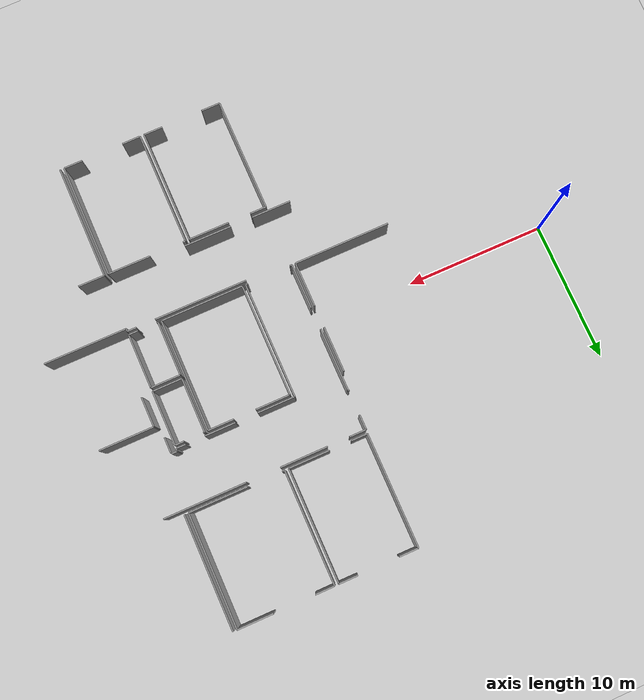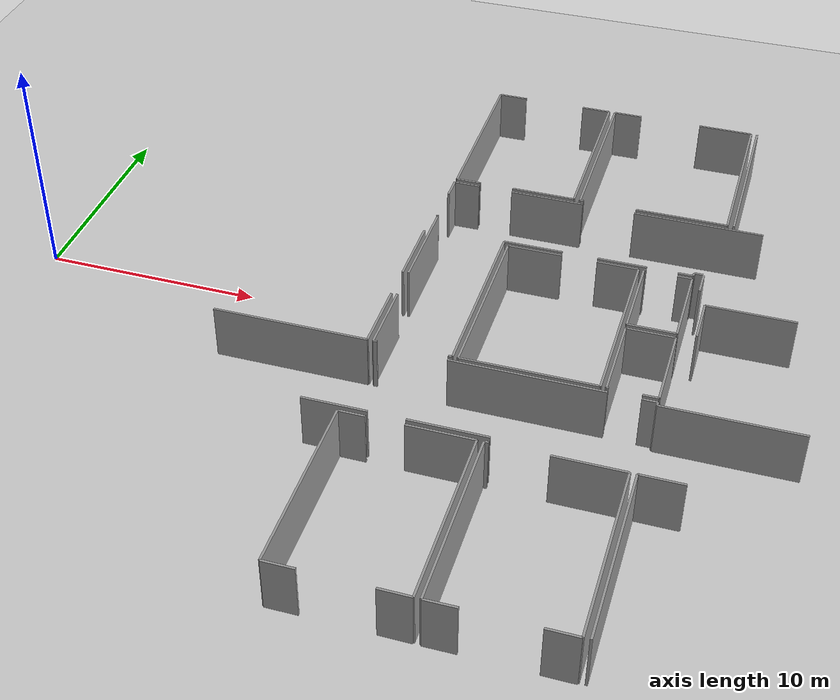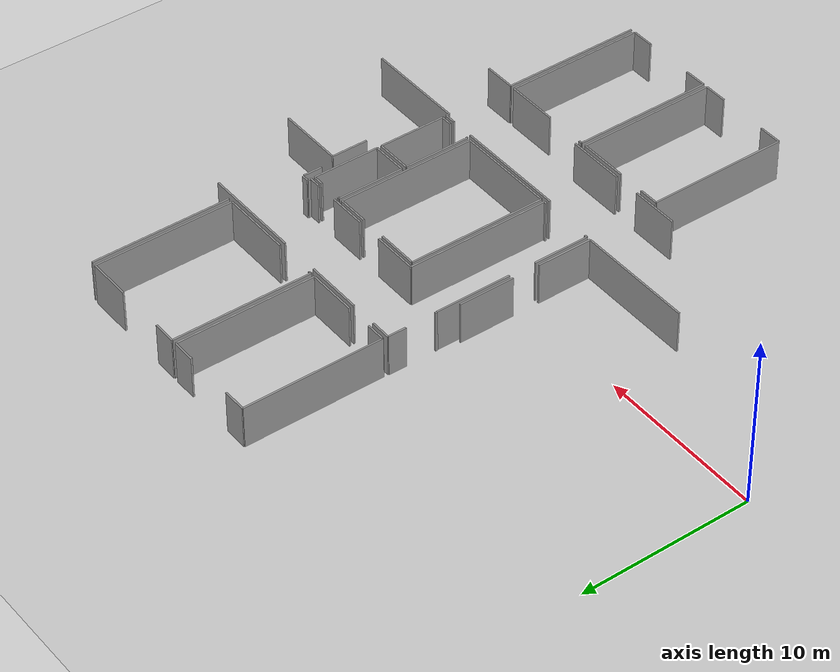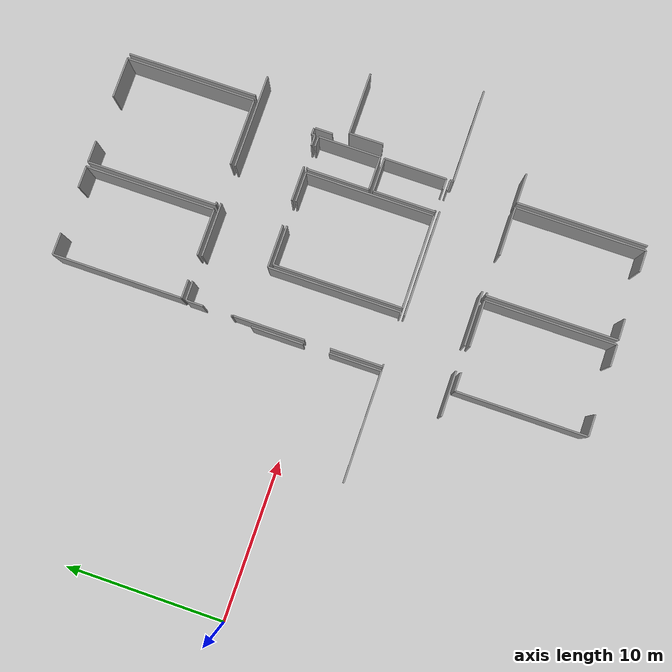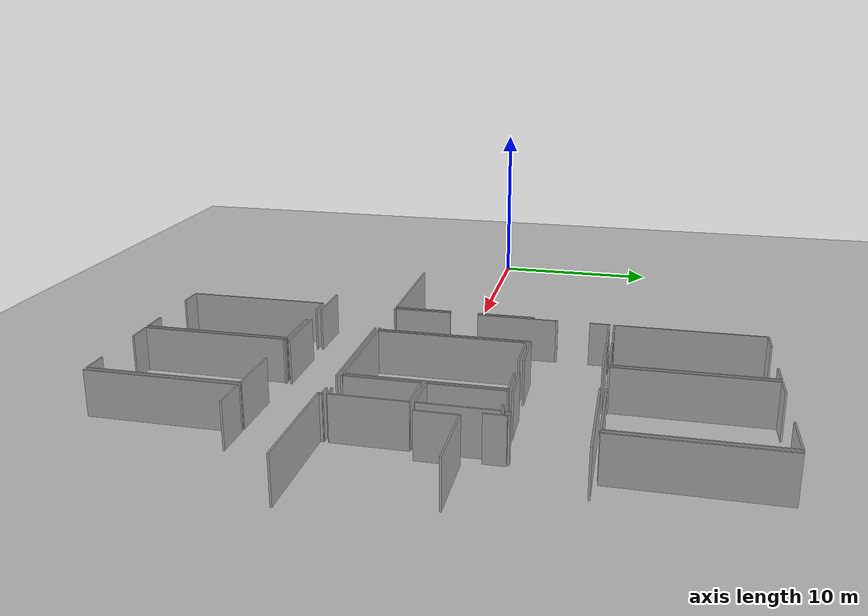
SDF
<sdf version="1.6">
 <world name="default">
  <model name="ground_plane">
   <static>1</static>
   <link name="link">
    <collision name="collision">
     <geometry><plane><normal>0 0 1</normal><size>100 100</size></plane></geometry>
     <surface><friction><ode><mu>100</mu><mu2>50</mu2></ode></friction></surface>
    </collision>
    <visual name="visual">
     <cast_shadows>0</cast_shadows>
     <geometry><plane><normal>0 0 1</normal><size>100 100</size></plane></geometry>
     <material>
      <script><uri>file://media/materials/scripts/gazebo.material</uri><name>Gazebo/Grey</name></script>
     </material>
    </visual>
   </link>
  </model>
  <model name="50041174">
   <static>1</static>
   <link name="Wall_67">
    <collision name="Wall_67_Collision">
     <geometry><box><size>8.19992383854 0.1 2.5</size></box></geometry>
     <pose>4.09996191927 0 1.25 0 0 0</pose>
    </collision>
    <visual name="Wall_67_Visual">
     <pose>4.09996191927 0 1.25 0 0 0</pose>
     <geometry><box><size>8.19992383854 0.1 2.5</size></box></geometry>
     <material>
      <script><uri>file://media/materials/scripts/gazebo.material</uri><name>Gazebo/Grey</name></script>
      <ambient>1 1 1 1</ambient>
     </material>
    </visual>
    <pose>95.7486671744 -33.5128205128 0 0 0 1.57079632679</pose>
   </link>
   <link name="Wall_68">
    <collision name="Wall_68_Collision">
     <geometry><box><size>1.89134298045 0.1 2.5</size></box></geometry>
     <pose>0.945671490226 0 1.25 0 0 0</pose>
    </collision>
    <visual name="Wall_68_Visual">
     <pose>0.945671490226 0 1.25 0 0 0</pose>
     <geometry><box><size>1.89134298045 0.1 2.5</size></box></geometry>
     <material>
      <script><uri>file://media/materials/scripts/gazebo.material</uri><name>Gazebo/Grey</name></script>
      <ambient>1 1 1 1</ambient>
     </material>
    </visual>
    <pose>95.7486671744 -25.3128966743 0 0 0 0.0</pose>
   </link>
   <link name="Wall_73">
    <collision name="Wall_73_Collision">
     <geometry><box><size>8.21541000254 0.1 2.5</size></box></geometry>
     <pose>4.10770500127 0 1.25 0 0 0</pose>
    </collision>
    <visual name="Wall_73_Visual">
     <pose>4.10770500127 0 1.25 0 0 0</pose>
     <geometry><box><size>8.21541000254 0.1 2.5</size></box></geometry>
     <material>
      <script><uri>file://media/materials/scripts/gazebo.material</uri><name>Gazebo/Grey</name></script>
      <ambient>1 1 1 1</ambient>
     </material>
    </visual>
    <pose>83.7559025133 -33.5304645849 0 0 0 1.57079632679</pose>
   </link>
   <link name="Wall_74">
    <collision name="Wall_74_Collision">
     <geometry><box><size>1.16400101549 0.1 2.5</size></box></geometry>
     <pose>0.582000507743 0 1.25 0 0 0</pose>
    </collision>
    <visual name="Wall_74_Visual">
     <pose>0.582000507743 0 1.25 0 0 0</pose>
     <geometry><box><size>1.16400101549 0.1 2.5</size></box></geometry>
     <material>
      <script><uri>file://media/materials/scripts/gazebo.material</uri><name>Gazebo/Grey</name></script>
      <ambient>1 1 1 1</ambient>
     </material>
    </visual>
    <pose>83.7559025133 -25.3150545824 0 0 0 0.0</pose>
   </link>
   <link name="Wall_75">
    <collision name="Wall_75_Collision">
     <geometry><box><size>2.92853516121 0.1 2.5</size></box></geometry>
     <pose>1.4642675806 0 1.25 0 0 0</pose>
    </collision>
    <visual name="Wall_75_Visual">
     <pose>1.4642675806 0 1.25 0 0 0</pose>
     <geometry><box><size>2.92853516121 0.1 2.5</size></box></geometry>
     <material>
      <script><uri>file://media/materials/scripts/gazebo.material</uri><name>Gazebo/Grey</name></script>
      <ambient>1 1 1 1</ambient>
     </material>
    </visual>
    <pose>86.5473470424 -25.3150545824 0 0 0 0.0</pose>
   </link>
   <link name="Wall_76">
    <collision name="Wall_76_Collision">
     <geometry><box><size>8.2129982229 0.1 2.5</size></box></geometry>
     <pose>4.10649911145 0 1.25 0 0 0</pose>
    </collision>
    <visual name="Wall_76_Visual">
     <pose>4.10649911145 0 1.25 0 0 0</pose>
     <geometry><box><size>8.2129982229 0.1 2.5</size></box></geometry>
     <material>
      <script><uri>file://media/materials/scripts/gazebo.material</uri><name>Gazebo/Grey</name></script>
      <ambient>1 1 1 1</ambient>
     </material>
    </visual>
    <pose>89.4758822036 -25.3150545824 0 0 0 -1.57079632679</pose>
   </link>
   <link name="Wall_77">
    <collision name="Wall_77_Collision">
     <geometry><box><size>1.36900228484 0.1 2.5</size></box></geometry>
     <pose>0.684501142422 0 1.25 0 0 0</pose>
    </collision>
    <visual name="Wall_77_Visual">
     <pose>0.684501142422 0 1.25 0 0 0</pose>
     <geometry><box><size>1.36900228484 0.1 2.5</size></box></geometry>
     <material>
      <script><uri>file://media/materials/scripts/gazebo.material</uri><name>Gazebo/Grey</name></script>
      <ambient>1 1 1 1</ambient>
     </material>
    </visual>
    <pose>89.4758822036 -33.5280528053 0 0 0 3.14159265359</pose>
   </link>
   <link name="Wall_78">
    <collision name="Wall_78_Collision">
     <geometry><box><size>1.36316537292 0.1 2.5</size></box></geometry>
     <pose>0.681582686461 0 1.25 0 0 0</pose>
    </collision>
    <visual name="Wall_78_Visual">
     <pose>0.681582686461 0 1.25 0 0 0</pose>
     <geometry><box><size>1.36316537292 0.1 2.5</size></box></geometry>
     <material>
      <script><uri>file://media/materials/scripts/gazebo.material</uri><name>Gazebo/Grey</name></script>
      <ambient>1 1 1 1</ambient>
     </material>
    </visual>
    <pose>85.1190657527 -33.5280528053 0 0 0 -3.13982340318</pose>
   </link>
   <link name="Wall_79">
    <collision name="Wall_79_Collision">
     <geometry><box><size>8.22162985529 0.1 2.5</size></box></geometry>
     <pose>4.11081492765 0 1.25 0 0 0</pose>
    </collision>
    <visual name="Wall_79_Visual">
     <pose>4.11081492765 0 1.25 0 0 0</pose>
     <geometry><box><size>8.22162985529 0.1 2.5</size></box></geometry>
     <material>
      <script><uri>file://media/materials/scripts/gazebo.material</uri><name>Gazebo/Grey</name></script>
      <ambient>1 1 1 1</ambient>
     </material>
    </visual>
    <pose>89.7594567149 -33.5283066768 0 0 0 1.57079632679</pose>
   </link>
   <link name="Wall_80">
    <collision name="Wall_80_Collision">
     <geometry><box><size>0.190149784209 0.1 2.5</size></box></geometry>
     <pose>0.0950748921046 0 1.25 0 0 0</pose>
    </collision>
    <visual name="Wall_80_Visual">
     <pose>0.0950748921046 0 1.25 0 0 0</pose>
     <geometry><box><size>0.190149784209 0.1 2.5</size></box></geometry>
     <material>
      <script><uri>file://media/materials/scripts/gazebo.material</uri><name>Gazebo/Grey</name></script>
      <ambient>1 1 1 1</ambient>
     </material>
    </visual>
    <pose>89.7594567149 -25.3066768215 0 0 0 0.0</pose>
   </link>
   <link name="Wall_81">
    <collision name="Wall_81_Collision">
     <geometry><box><size>3.08085808581 0.1 2.5</size></box></geometry>
     <pose>1.5404290429 0 1.25 0 0 0</pose>
    </collision>
    <visual name="Wall_81_Visual">
     <pose>1.5404290429 0 1.25 0 0 0</pose>
     <geometry><box><size>3.08085808581 0.1 2.5</size></box></geometry>
     <material>
      <script><uri>file://media/materials/scripts/gazebo.material</uri><name>Gazebo/Grey</name></script>
      <ambient>1 1 1 1</ambient>
     </material>
    </visual>
    <pose>92.3782685961 -25.3066768215 0 0 0 0.0</pose>
   </link>
   <link name="Wall_82">
    <collision name="Wall_82_Collision">
     <geometry><box><size>8.20728611323 0.1 2.5</size></box></geometry>
     <pose>4.10364305661 0 1.25 0 0 0</pose>
    </collision>
    <visual name="Wall_82_Visual">
     <pose>4.10364305661 0 1.25 0 0 0</pose>
     <geometry><box><size>8.20728611323 0.1 2.5</size></box></geometry>
     <material>
      <script><uri>file://media/materials/scripts/gazebo.material</uri><name>Gazebo/Grey</name></script>
      <ambient>1 1 1 1</ambient>
     </material>
    </visual>
    <pose>95.4591266819 -25.3066768215 0 0 0 -1.57079632679</pose>
   </link>
   <link name="Wall_83">
    <collision name="Wall_83_Collision">
     <geometry><box><size>1.34729626809 0.1 2.5</size></box></geometry>
     <pose>0.673648134044 0 1.25 0 0 0</pose>
    </collision>
    <visual name="Wall_83_Visual">
     <pose>0.673648134044 0 1.25 0 0 0</pose>
     <geometry><box><size>1.34729626809 0.1 2.5</size></box></geometry>
     <material>
      <script><uri>file://media/materials/scripts/gazebo.material</uri><name>Gazebo/Grey</name></script>
      <ambient>1 1 1 1</ambient>
     </material>
    </visual>
    <pose>95.4591266819 -33.5139629348 0 0 0 3.14159265359</pose>
   </link>
   <link name="Wall_84">
    <collision name="Wall_84_Collision">
     <geometry><box><size>1.34026462173 0.1 2.5</size></box></geometry>
     <pose>0.670132310867 0 1.25 0 0 0</pose>
    </collision>
    <visual name="Wall_84_Visual">
     <pose>0.670132310867 0 1.25 0 0 0</pose>
     <geometry><box><size>1.34026462173 0.1 2.5</size></box></geometry>
     <material>
      <script><uri>file://media/materials/scripts/gazebo.material</uri><name>Gazebo/Grey</name></script>
      <ambient>1 1 1 1</ambient>
     </material>
    </visual>
    <pose>91.0996445798 -33.5139629348 0 0 0 -3.13089027761</pose>
   </link>
   <link name="Wall_91">
    <collision name="Wall_91_Collision">
     <geometry><box><size>3.41838029957 0.1 2.5</size></box></geometry>
     <pose>1.70919014978 0 1.25 0 0 0</pose>
    </collision>
    <visual name="Wall_91_Visual">
     <pose>1.70919014978 0 1.25 0 0 0</pose>
     <geometry><box><size>3.41838029957 0.1 2.5</size></box></geometry>
     <material>
      <script><uri>file://media/materials/scripts/gazebo.material</uri><name>Gazebo/Grey</name></script>
      <ambient>1 1 1 1</ambient>
     </material>
    </visual>
    <pose>89.9308200051 -25.0140898705 0 0 0 3.14159265359</pose>
   </link>
   <link name="Wall_92">
    <collision name="Wall_92_Collision">
     <geometry><box><size>2.82533637979 0.1 2.5</size></box></geometry>
     <pose>1.4126681899 0 1.25 0 0 0</pose>
    </collision>
    <visual name="Wall_92_Visual">
     <pose>1.4126681899 0 1.25 0 0 0</pose>
     <geometry><box><size>2.82533637979 0.1 2.5</size></box></geometry>
     <material>
      <script><uri>file://media/materials/scripts/gazebo.material</uri><name>Gazebo/Grey</name></script>
      <ambient>1 1 1 1</ambient>
     </material>
    </visual>
    <pose>84.9135567403 -25.0140898705 0 0 0 3.14159265359</pose>
   </link>
   <link name="Wall_118">
    <collision name="Wall_118_Collision">
     <geometry><box><size>6.68088347296 0.1 2.5</size></box></geometry>
     <pose>3.34044173648 0 1.25 0 0 0</pose>
    </collision>
    <visual name="Wall_118_Visual">
     <pose>3.34044173648 0 1.25 0 0 0</pose>
     <geometry><box><size>6.68088347296 0.1 2.5</size></box></geometry>
     <material>
      <script><uri>file://media/materials/scripts/gazebo.material</uri><name>Gazebo/Grey</name></script>
      <ambient>1 1 1 1</ambient>
     </material>
    </visual>
    <pose>87.0496318863 -21.0873318101 0 0 0 0.0</pose>
   </link>
   <link name="Wall_119">
    <collision name="Wall_119_Collision">
     <geometry><box><size>0.655750190404 0.1 2.5</size></box></geometry>
     <pose>0.327875095202 0 1.25 0 0 0</pose>
    </collision>
    <visual name="Wall_119_Visual">
     <pose>0.327875095202 0 1.25 0 0 0</pose>
     <geometry><box><size>0.655750190404 0.1 2.5</size></box></geometry>
     <material>
      <script><uri>file://media/materials/scripts/gazebo.material</uri><name>Gazebo/Grey</name></script>
      <ambient>1 1 1 1</ambient>
     </material>
    </visual>
    <pose>95.1142421935 -21.0873318101 0 0 0 0.0</pose>
   </link>
   <link name="Wall_120">
    <collision name="Wall_120_Collision">
     <geometry><box><size>0.196877380046 0.1 2.5</size></box></geometry>
     <pose>0.0984386900228 0 1.25 0 0 0</pose>
    </collision>
    <visual name="Wall_120_Visual">
     <pose>0.0984386900228 0 1.25 0 0 0</pose>
     <geometry><box><size>0.196877380046 0.1 2.5</size></box></geometry>
     <material>
      <script><uri>file://media/materials/scripts/gazebo.material</uri><name>Gazebo/Grey</name></script>
      <ambient>1 1 1 1</ambient>
     </material>
    </visual>
    <pose>95.7699923839 -21.0873318101 0 0 0 -1.57079632679</pose>
   </link>
   <link name="Wall_121">
    <collision name="Wall_121_Collision">
     <geometry><box><size>5.97042396547 0.1 2.5</size></box></geometry>
     <pose>2.98521198274 0 1.25 0 0 0</pose>
    </collision>
    <visual name="Wall_121_Visual">
     <pose>2.98521198274 0 1.25 0 0 0</pose>
     <geometry><box><size>5.97042396547 0.1 2.5</size></box></geometry>
     <material>
      <script><uri>file://media/materials/scripts/gazebo.material</uri><name>Gazebo/Grey</name></script>
      <ambient>1 1 1 1</ambient>
     </material>
    </visual>
    <pose>95.7699923839 -21.2842091901 0 0 0 0.0</pose>
   </link>
   <link name="Wall_181">
    <collision name="Wall_181_Collision">
     <geometry><box><size>3.27963950241 0.1 2.5</size></box></geometry>
     <pose>1.63981975121 0 1.25 0 0 0</pose>
    </collision>
    <visual name="Wall_181_Visual">
     <pose>1.63981975121 0 1.25 0 0 0</pose>
     <geometry><box><size>3.27963950241 0.1 2.5</size></box></geometry>
     <material>
      <script><uri>file://media/materials/scripts/gazebo.material</uri><name>Gazebo/Grey</name></script>
      <ambient>1 1 1 1</ambient>
     </material>
    </visual>
    <pose>83.4898451384 -12.6868494542 0 0 0 -1.57079632679</pose>
   </link>
   <link name="Wall_182">
    <collision name="Wall_182_Collision">
     <geometry><box><size>3.25285605484 0.1 2.5</size></box></geometry>
     <pose>1.62642802742 0 1.25 0 0 0</pose>
    </collision>
    <visual name="Wall_182_Visual">
     <pose>1.62642802742 0 1.25 0 0 0</pose>
     <geometry><box><size>3.25285605484 0.1 2.5</size></box></geometry>
     <material>
      <script><uri>file://media/materials/scripts/gazebo.material</uri><name>Gazebo/Grey</name></script>
      <ambient>1 1 1 1</ambient>
     </material>
    </visual>
    <pose>83.4898451384 -17.5826351866 0 0 0 -1.57079632679</pose>
   </link>
   <link name="Wall_183">
    <collision name="Wall_183_Collision">
     <geometry><box><size>6.9332358296 0.1 2.5</size></box></geometry>
     <pose>3.4666179148 0 1.25 0 0 0</pose>
    </collision>
    <visual name="Wall_183_Visual">
     <pose>3.4666179148 0 1.25 0 0 0</pose>
     <geometry><box><size>6.9332358296 0.1 2.5</size></box></geometry>
     <material>
      <script><uri>file://media/materials/scripts/gazebo.material</uri><name>Gazebo/Grey</name></script>
      <ambient>1 1 1 1</ambient>
     </material>
    </visual>
    <pose>83.4898451384 -20.8354912414 0 0 0 -3.1405124636</pose>
   </link>
   <link name="Wall_184">
    <collision name="Wall_184_Collision">
     <geometry><box><size>1.20792079208 0.1 2.5</size></box></geometry>
     <pose>0.60396039604 0 1.25 0 0 0</pose>
    </collision>
    <visual name="Wall_184_Visual">
     <pose>0.60396039604 0 1.25 0 0 0</pose>
     <geometry><box><size>1.20792079208 0.1 2.5</size></box></geometry>
     <material>
      <script><uri>file://media/materials/scripts/gazebo.material</uri><name>Gazebo/Grey</name></script>
      <ambient>1 1 1 1</ambient>
     </material>
    </visual>
    <pose>83.7183295253 -8.49187611069 0 0 0 0.0</pose>
   </link>
   <link name="Wall_185">
    <collision name="Wall_185_Collision">
     <geometry><box><size>3.42447321655 0.1 2.5</size></box></geometry>
     <pose>1.71223660828 0 1.25 0 0 0</pose>
    </collision>
    <visual name="Wall_185_Visual">
     <pose>1.71223660828 0 1.25 0 0 0</pose>
     <geometry><box><size>3.42447321655 0.1 2.5</size></box></geometry>
     <material>
      <script><uri>file://media/materials/scripts/gazebo.material</uri><name>Gazebo/Grey</name></script>
      <ambient>1 1 1 1</ambient>
     </material>
    </visual>
    <pose>86.5227215029 -8.49187611069 0 0 0 0.0</pose>
   </link>
   <link name="Wall_186">
    <collision name="Wall_186_Collision">
     <geometry><box><size>5.94249809596 0.1 2.5</size></box></geometry>
     <pose>2.97124904798 0 1.25 0 0 0</pose>
    </collision>
    <visual name="Wall_186_Visual">
     <pose>2.97124904798 0 1.25 0 0 0</pose>
     <geometry><box><size>5.94249809596 0.1 2.5</size></box></geometry>
     <material>
      <script><uri>file://media/materials/scripts/gazebo.material</uri><name>Gazebo/Grey</name></script>
      <ambient>1 1 1 1</ambient>
     </material>
    </visual>
    <pose>92.3902005585 -8.49187611069 0 0 0 0.0</pose>
   </link>
   <link name="Wall_194">
    <collision name="Wall_194_Collision">
     <geometry><box><size>0.393247017009 0.1 2.5</size></box></geometry>
     <pose>0.196623508505 0 1.25 0 0 0</pose>
    </collision>
    <visual name="Wall_194_Visual">
     <pose>0.196623508505 0 1.25 0 0 0</pose>
     <geometry><box><size>0.393247017009 0.1 2.5</size></box></geometry>
     <material>
      <script><uri>file://media/materials/scripts/gazebo.material</uri><name>Gazebo/Grey</name></script>
      <ambient>1 1 1 1</ambient>
     </material>
    </visual>
    <pose>96.1750444275 -12.2396547347 0 0 0 3.14159265359</pose>
   </link>
   <link name="Wall_195">
    <collision name="Wall_195_Collision">
     <geometry><box><size>0.205128205128 0.1 2.5</size></box></geometry>
     <pose>0.102564102564 0 1.25 0 0 0</pose>
    </collision>
    <visual name="Wall_195_Visual">
     <pose>0.102564102564 0 1.25 0 0 0</pose>
     <geometry><box><size>0.205128205128 0.1 2.5</size></box></geometry>
     <material>
      <script><uri>file://media/materials/scripts/gazebo.material</uri><name>Gazebo/Grey</name></script>
      <ambient>1 1 1 1</ambient>
     </material>
    </visual>
    <pose>95.7817974105 -12.2396547347 0 0 0 -1.57079632679</pose>
   </link>
   <link name="Wall_196">
    <collision name="Wall_196_Collision">
     <geometry><box><size>0.678344757553 0.1 2.5</size></box></geometry>
     <pose>0.339172378776 0 1.25 0 0 0</pose>
    </collision>
    <visual name="Wall_196_Visual">
     <pose>0.339172378776 0 1.25 0 0 0</pose>
     <geometry><box><size>0.678344757553 0.1 2.5</size></box></geometry>
     <material>
      <script><uri>file://media/materials/scripts/gazebo.material</uri><name>Gazebo/Grey</name></script>
      <ambient>1 1 1 1</ambient>
     </material>
    </visual>
    <pose>95.7817974105 -12.4447829398 0 0 0 3.14159265359</pose>
   </link>
   <link name="Wall_197">
    <collision name="Wall_197_Collision">
     <geometry><box><size>2.2173140391 0.1 2.5</size></box></geometry>
     <pose>1.10865701955 0 1.25 0 0 0</pose>
    </collision>
    <visual name="Wall_197_Visual">
     <pose>1.10865701955 0 1.25 0 0 0</pose>
     <geometry><box><size>2.2173140391 0.1 2.5</size></box></geometry>
     <material>
      <script><uri>file://media/materials/scripts/gazebo.material</uri><name>Gazebo/Grey</name></script>
      <ambient>1 1 1 1</ambient>
     </material>
    </visual>
    <pose>93.7132520944 -12.4447829398 0 0 0 3.14159265359</pose>
   </link>
   <link name="Wall_198">
    <collision name="Wall_198_Collision">
     <geometry><box><size>2.69446560041 0.1 2.5</size></box></geometry>
     <pose>1.3472328002 0 1.25 0 0 0</pose>
    </collision>
    <visual name="Wall_198_Visual">
     <pose>1.3472328002 0 1.25 0 0 0</pose>
     <geometry><box><size>2.69446560041 0.1 2.5</size></box></geometry>
     <material>
      <script><uri>file://media/materials/scripts/gazebo.material</uri><name>Gazebo/Grey</name></script>
      <ambient>1 1 1 1</ambient>
     </material>
    </visual>
    <pose>89.8827113481 -12.4447829398 0 0 0 3.14159265359</pose>
   </link>
   <link name="Wall_199">
    <collision name="Wall_199_Collision">
     <geometry><box><size>8.38931200812 0.1 2.5</size></box></geometry>
     <pose>4.19465600406 0 1.25 0 0 0</pose>
    </collision>
    <visual name="Wall_199_Visual">
     <pose>4.19465600406 0 1.25 0 0 0</pose>
     <geometry><box><size>8.38931200812 0.1 2.5</size></box></geometry>
     <material>
      <script><uri>file://media/materials/scripts/gazebo.material</uri><name>Gazebo/Grey</name></script>
      <ambient>1 1 1 1</ambient>
     </material>
    </visual>
    <pose>87.1882457477 -12.4447829398 0 0 0 -1.57079632679</pose>
   </link>
   <link name="Wall_200">
    <collision name="Wall_200_Collision">
     <geometry><box><size>0.178217821782 0.1 2.5</size></box></geometry>
     <pose>0.0891089108911 0 1.25 0 0 0</pose>
    </collision>
    <visual name="Wall_200_Visual">
     <pose>0.0891089108911 0 1.25 0 0 0</pose>
     <geometry><box><size>0.178217821782 0.1 2.5</size></box></geometry>
     <material>
      <script><uri>file://media/materials/scripts/gazebo.material</uri><name>Gazebo/Grey</name></script>
      <ambient>1 1 1 1</ambient>
     </material>
    </visual>
    <pose>87.1882457477 -20.834094948 0 0 0 3.14159265359</pose>
   </link>
   <link name="Wall_201">
    <collision name="Wall_201_Collision">
     <geometry><box><size>0.160954556994 0.1 2.5</size></box></geometry>
     <pose>0.0804772784971 0 1.25 0 0 0</pose>
    </collision>
    <visual name="Wall_201_Visual">
     <pose>0.0804772784971 0 1.25 0 0 0</pose>
     <geometry><box><size>0.160954556994 0.1 2.5</size></box></geometry>
     <material>
      <script><uri>file://media/materials/scripts/gazebo.material</uri><name>Gazebo/Grey</name></script>
      <ambient>1 1 1 1</ambient>
     </material>
    </visual>
    <pose>83.9075907591 -20.834094948 0 0 0 3.14159265359</pose>
   </link>
   <link name="Wall_202">
    <collision name="Wall_202_Collision">
     <geometry><box><size>3.28687484133 0.1 2.5</size></box></geometry>
     <pose>1.64343742067 0 1.25 0 0 0</pose>
    </collision>
    <visual name="Wall_202_Visual">
     <pose>1.64343742067 0 1.25 0 0 0</pose>
     <geometry><box><size>3.28687484133 0.1 2.5</size></box></geometry>
     <material>
      <script><uri>file://media/materials/scripts/gazebo.material</uri><name>Gazebo/Grey</name></script>
      <ambient>1 1 1 1</ambient>
     </material>
    </visual>
    <pose>83.7466362021 -20.834094948 0 0 0 1.57079632679</pose>
   </link>
   <link name="Wall_203">
    <collision name="Wall_203_Collision">
     <geometry><box><size>4.48895658797 0.1 2.5</size></box></geometry>
     <pose>2.24447829398 0 1.25 0 0 0</pose>
    </collision>
    <visual name="Wall_203_Visual">
     <pose>2.24447829398 0 1.25 0 0 0</pose>
     <geometry><box><size>4.48895658797 0.1 2.5</size></box></geometry>
     <material>
      <script><uri>file://media/materials/scripts/gazebo.material</uri><name>Gazebo/Grey</name></script>
      <ambient>1 1 1 1</ambient>
     </material>
    </visual>
    <pose>83.7466362021 -15.949098756 0 0 0 1.57079632679</pose>
   </link>
   <link name="Wall_204">
    <collision name="Wall_204_Collision">
     <geometry><box><size>0.031480071084 0.1 2.5</size></box></geometry>
     <pose>0.015740035542 0 1.25 0 0 0</pose>
    </collision>
    <visual name="Wall_204_Visual">
     <pose>0.015740035542 0 1.25 0 0 0</pose>
     <geometry><box><size>0.031480071084 0.1 2.5</size></box></geometry>
     <material>
      <script><uri>file://media/materials/scripts/gazebo.material</uri><name>Gazebo/Grey</name></script>
      <ambient>1 1 1 1</ambient>
     </material>
    </visual>
    <pose>83.7466362021 -11.4601421681 0 0 0 3.14159265359</pose>
   </link>
   <link name="Wall_205">
    <collision name="Wall_205_Collision">
     <geometry><box><size>0.1191926885 0.1 2.5</size></box></geometry>
     <pose>0.0595963442498 0 1.25 0 0 0</pose>
    </collision>
    <visual name="Wall_205_Visual">
     <pose>0.0595963442498 0 1.25 0 0 0</pose>
     <geometry><box><size>0.1191926885 0.1 2.5</size></box></geometry>
     <material>
      <script><uri>file://media/materials/scripts/gazebo.material</uri><name>Gazebo/Grey</name></script>
      <ambient>1 1 1 1</ambient>
     </material>
    </visual>
    <pose>83.715156131 -11.4601421681 0 0 0 1.57079632679</pose>
   </link>
   <link name="Wall_206">
    <collision name="Wall_206_Collision">
     <geometry><box><size>1.07768936379 0.1 2.5</size></box></geometry>
     <pose>0.538844681894 0 1.25 0 0 0</pose>
    </collision>
    <visual name="Wall_206_Visual">
     <pose>0.538844681894 0 1.25 0 0 0</pose>
     <geometry><box><size>1.07768936379 0.1 2.5</size></box></geometry>
     <material>
      <script><uri>file://media/materials/scripts/gazebo.material</uri><name>Gazebo/Grey</name></script>
      <ambient>1 1 1 1</ambient>
     </material>
    </visual>
    <pose>83.715156131 -9.56956080223 0 0 0 1.56785169455</pose>
   </link>
   <link name="Wall_207">
    <collision name="Wall_207_Collision">
     <geometry><box><size>8.14876872303 0.1 2.5</size></box></geometry>
     <pose>4.07438436151 0 1.25 0 0 0</pose>
    </collision>
    <visual name="Wall_207_Visual">
     <pose>4.07438436151 0 1.25 0 0 0</pose>
     <geometry><box><size>8.14876872303 0.1 2.5</size></box></geometry>
     <material>
      <script><uri>file://media/materials/scripts/gazebo.material</uri><name>Gazebo/Grey</name></script>
      <ambient>1 1 1 1</ambient>
     </material>
    </visual>
    <pose>87.4329779132 -20.8389185072 0 0 0 1.57079632679</pose>
   </link>
   <link name="Wall_208">
    <collision name="Wall_208_Collision">
     <geometry><box><size>2.48172124905 0.1 2.5</size></box></geometry>
     <pose>1.24086062452 0 1.25 0 0 0</pose>
    </collision>
    <visual name="Wall_208_Visual">
     <pose>1.24086062452 0 1.25 0 0 0</pose>
     <geometry><box><size>2.48172124905 0.1 2.5</size></box></geometry>
     <material>
      <script><uri>file://media/materials/scripts/gazebo.material</uri><name>Gazebo/Grey</name></script>
      <ambient>1 1 1 1</ambient>
     </material>
    </visual>
    <pose>87.4329779132 -12.6901497842 0 0 0 0.0</pose>
   </link>
   <link name="Wall_209">
    <collision name="Wall_209_Collision">
     <geometry><box><size>1.86697131252 0.1 2.5</size></box></geometry>
     <pose>0.933485656258 0 1.25 0 0 0</pose>
    </collision>
    <visual name="Wall_209_Visual">
     <pose>0.933485656258 0 1.25 0 0 0</pose>
     <geometry><box><size>1.86697131252 0.1 2.5</size></box></geometry>
     <material>
      <script><uri>file://media/materials/scripts/gazebo.material</uri><name>Gazebo/Grey</name></script>
      <ambient>1 1 1 1</ambient>
     </material>
    </visual>
    <pose>91.521579081 -12.6901497842 0 0 0 0.0</pose>
   </link>
   <link name="Wall_210">
    <collision name="Wall_210_Collision">
     <geometry><box><size>8.13670982483 0.1 2.5</size></box></geometry>
     <pose>4.06835491241 0 1.25 0 0 0</pose>
    </collision>
    <visual name="Wall_210_Visual">
     <pose>4.06835491241 0 1.25 0 0 0</pose>
     <geometry><box><size>8.13670982483 0.1 2.5</size></box></geometry>
     <material>
      <script><uri>file://media/materials/scripts/gazebo.material</uri><name>Gazebo/Grey</name></script>
      <ambient>1 1 1 1</ambient>
     </material>
    </visual>
    <pose>93.3885503935 -12.6901497842 0 0 0 -1.57079632679</pose>
   </link>
   <link name="Wall_211">
    <collision name="Wall_211_Collision">
     <geometry><box><size>5.9555846888 0.1 2.5</size></box></geometry>
     <pose>2.9777923444 0 1.25 0 0 0</pose>
    </collision>
    <visual name="Wall_211_Visual">
     <pose>2.9777923444 0 1.25 0 0 0</pose>
     <geometry><box><size>5.9555846888 0.1 2.5</size></box></geometry>
     <material>
      <script><uri>file://media/materials/scripts/gazebo.material</uri><name>Gazebo/Grey</name></script>
      <ambient>1 1 1 1</ambient>
     </material>
    </visual>
    <pose>93.3885503935 -20.826859609 0 0 0 -3.13956784712</pose>
   </link>
   <link name="Wall_212">
    <collision name="Wall_212_Collision">
     <geometry><box><size>3.94643310485 0.1 2.5</size></box></geometry>
     <pose>1.97321655242 0 1.25 0 0 0</pose>
    </collision>
    <visual name="Wall_212_Visual">
     <pose>1.97321655242 0 1.25 0 0 0</pose>
     <geometry><box><size>3.94643310485 0.1 2.5</size></box></geometry>
     <material>
      <script><uri>file://media/materials/scripts/gazebo.material</uri><name>Gazebo/Grey</name></script>
      <ambient>1 1 1 1</ambient>
     </material>
    </visual>
    <pose>93.6309977152 -20.8379030211 0 0 0 1.57079632679</pose>
   </link>
   <link name="Wall_213">
    <collision name="Wall_213_Collision">
     <geometry><box><size>2.1424219345 0.1 2.5</size></box></geometry>
     <pose>1.07121096725 0 1.25 0 0 0</pose>
    </collision>
    <visual name="Wall_213_Visual">
     <pose>1.07121096725 0 1.25 0 0 0</pose>
     <geometry><box><size>2.1424219345 0.1 2.5</size></box></geometry>
     <material>
      <script><uri>file://media/materials/scripts/gazebo.material</uri><name>Gazebo/Grey</name></script>
      <ambient>1 1 1 1</ambient>
     </material>
    </visual>
    <pose>93.6309977152 -16.8914699162 0 0 0 0.0</pose>
   </link>
   <link name="Wall_214">
    <collision name="Wall_214_Collision">
     <geometry><box><size>3.9436405179 0.1 2.5</size></box></geometry>
     <pose>1.97182025895 0 1.25 0 0 0</pose>
    </collision>
    <visual name="Wall_214_Visual">
     <pose>1.97182025895 0 1.25 0 0 0</pose>
     <geometry><box><size>3.9436405179 0.1 2.5</size></box></geometry>
     <material>
      <script><uri>file://media/materials/scripts/gazebo.material</uri><name>Gazebo/Grey</name></script>
      <ambient>1 1 1 1</ambient>
     </material>
    </visual>
    <pose>95.7734196497 -16.8914699162 0 0 0 -1.57079632679</pose>
   </link>
   <link name="Wall_215">
    <collision name="Wall_215_Collision">
     <geometry><box><size>0.673902005585 0.1 2.5</size></box></geometry>
     <pose>0.336951002793 0 1.25 0 0 0</pose>
    </collision>
    <visual name="Wall_215_Visual">
     <pose>0.336951002793 0 1.25 0 0 0</pose>
     <geometry><box><size>0.673902005585 0.1 2.5</size></box></geometry>
     <material>
      <script><uri>file://media/materials/scripts/gazebo.material</uri><name>Gazebo/Grey</name></script>
      <ambient>1 1 1 1</ambient>
     </material>
    </visual>
    <pose>95.7734196497 -20.8351104341 0 0 0 3.14159265359</pose>
   </link>
   <link name="Wall_216">
    <collision name="Wall_216_Collision">
     <geometry><box><size>0.0858540103359 0.1 2.5</size></box></geometry>
     <pose>0.0429270051679 0 1.25 0 0 0</pose>
    </collision>
    <visual name="Wall_216_Visual">
     <pose>0.0429270051679 0 1.25 0 0 0</pose>
     <geometry><box><size>0.0858540103359 0.1 2.5</size></box></geometry>
     <material>
      <script><uri>file://media/materials/scripts/gazebo.material</uri><name>Gazebo/Grey</name></script>
      <ambient>1 1 1 1</ambient>
     </material>
    </visual>
    <pose>93.716806296 -20.8351104341 0 0 0 -3.10905975724</pose>
   </link>
   <link name="Wall_217">
    <collision name="Wall_217_Collision">
     <geometry><box><size>2.15587712617 0.1 2.5</size></box></geometry>
     <pose>1.07793856309 0 1.25 0 0 0</pose>
    </collision>
    <visual name="Wall_217_Visual">
     <pose>1.07793856309 0 1.25 0 0 0</pose>
     <geometry><box><size>2.15587712617 0.1 2.5</size></box></geometry>
     <material>
      <script><uri>file://media/materials/scripts/gazebo.material</uri><name>Gazebo/Grey</name></script>
      <ambient>1 1 1 1</ambient>
     </material>
    </visual>
    <pose>96.5861893882 -16.5349073369 0 0 0 1.57079632679</pose>
   </link>
   <link name="Wall_218">
    <collision name="Wall_218_Collision">
     <geometry><box><size>3.94998730642 0.1 2.5</size></box></geometry>
     <pose>1.97499365321 0 1.25 0 0 0</pose>
    </collision>
    <visual name="Wall_218_Visual">
     <pose>1.97499365321 0 1.25 0 0 0</pose>
     <geometry><box><size>3.94998730642 0.1 2.5</size></box></geometry>
     <material>
      <script><uri>file://media/materials/scripts/gazebo.material</uri><name>Gazebo/Grey</name></script>
      <ambient>1 1 1 1</ambient>
     </material>
    </visual>
    <pose>96.5861893882 -14.3790302107 0 0 0 0.0</pose>
   </link>
   <link name="Wall_300">
    <collision name="Wall_300_Collision">
     <geometry><box><size>8.19865448083 0.1 2.5</size></box></geometry>
     <pose>4.09932724042 0 1.25 0 0 0</pose>
    </collision>
    <visual name="Wall_300_Visual">
     <pose>4.09932724042 0 1.25 0 0 0</pose>
     <geometry><box><size>8.19865448083 0.1 2.5</size></box></geometry>
     <material>
      <script><uri>file://media/materials/scripts/gazebo.material</uri><name>Gazebo/Grey</name></script>
      <ambient>1 1 1 1</ambient>
     </material>
    </visual>
    <pose>83.7518405687 -8.21045950749 0 0 0 1.57079632679</pose>
   </link>
   <link name="Wall_301">
    <collision name="Wall_301_Collision">
     <geometry><box><size>1.36824067022 0.1 2.5</size></box></geometry>
     <pose>0.68412033511 0 1.25 0 0 0</pose>
    </collision>
    <visual name="Wall_301_Visual">
     <pose>0.68412033511 0 1.25 0 0 0</pose>
     <geometry><box><size>1.36824067022 0.1 2.5</size></box></geometry>
     <material>
      <script><uri>file://media/materials/scripts/gazebo.material</uri><name>Gazebo/Grey</name></script>
      <ambient>1 1 1 1</ambient>
     </material>
    </visual>
    <pose>83.7518405687 -0.0118050266565 0 0 0 0.0</pose>
   </link>
   <link name="Wall_302">
    <collision name="Wall_302_Collision">
     <geometry><box><size>1.37242955065 0.1 2.5</size></box></geometry>
     <pose>0.686214775324 0 1.25 0 0 0</pose>
    </collision>
    <visual name="Wall_302_Visual">
     <pose>0.686214775324 0 1.25 0 0 0</pose>
     <geometry><box><size>1.37242955065 0.1 2.5</size></box></geometry>
     <material>
      <script><uri>file://media/materials/scripts/gazebo.material</uri><name>Gazebo/Grey</name></script>
      <ambient>1 1 1 1</ambient>
     </material>
    </visual>
    <pose>88.0889819751 -0.0118050266565 0 0 0 0.0</pose>
   </link>
   <link name="Wall_303">
    <collision name="Wall_303_Collision">
     <geometry><box><size>8.19675044428 0.1 2.5</size></box></geometry>
     <pose>4.09837522214 0 1.25 0 0 0</pose>
    </collision>
    <visual name="Wall_303_Visual">
     <pose>4.09837522214 0 1.25 0 0 0</pose>
     <geometry><box><size>8.19675044428 0.1 2.5</size></box></geometry>
     <material>
      <script><uri>file://media/materials/scripts/gazebo.material</uri><name>Gazebo/Grey</name></script>
      <ambient>1 1 1 1</ambient>
     </material>
    </visual>
    <pose>89.4614115258 -0.0118050266565 0 0 0 -1.57079632679</pose>
   </link>
   <link name="Wall_304">
    <collision name="Wall_304_Collision">
     <geometry><box><size>2.96179233308 0.1 2.5</size></box></geometry>
     <pose>1.48089616654 0 1.25 0 0 0</pose>
    </collision>
    <visual name="Wall_304_Visual">
     <pose>1.48089616654 0 1.25 0 0 0</pose>
     <geometry><box><size>2.96179233308 0.1 2.5</size></box></geometry>
     <material>
      <script><uri>file://media/materials/scripts/gazebo.material</uri><name>Gazebo/Grey</name></script>
      <ambient>1 1 1 1</ambient>
     </material>
    </visual>
    <pose>89.4614115258 -8.20855547093 0 0 0 3.14159265359</pose>
   </link>
   <link name="Wall_305">
    <collision name="Wall_305_Collision">
     <geometry><box><size>1.16349483036 0.1 2.5</size></box></geometry>
     <pose>0.581747415182 0 1.25 0 0 0</pose>
    </collision>
    <visual name="Wall_305_Visual">
     <pose>0.581747415182 0 1.25 0 0 0</pose>
     <geometry><box><size>1.16349483036 0.1 2.5</size></box></geometry>
     <material>
      <script><uri>file://media/materials/scripts/gazebo.material</uri><name>Gazebo/Grey</name></script>
      <ambient>1 1 1 1</ambient>
     </material>
    </visual>
    <pose>84.9153338411 -8.20855547093 0 0 0 -3.1399561724</pose>
   </link>
   <link name="Wall_306">
    <collision name="Wall_306_Collision">
     <geometry><box><size>8.2018278751 0.1 2.5</size></box></geometry>
     <pose>4.10091393755 0 1.25 0 0 0</pose>
    </collision>
    <visual name="Wall_306_Visual">
     <pose>4.10091393755 0 1.25 0 0 0</pose>
     <geometry><box><size>8.2018278751 0.1 2.5</size></box></geometry>
     <material>
      <script><uri>file://media/materials/scripts/gazebo.material</uri><name>Gazebo/Grey</name></script>
      <ambient>1 1 1 1</ambient>
     </material>
    </visual>
    <pose>89.758822036 -8.20931708555 0 0 0 1.57079632679</pose>
   </link>
   <link name="Wall_307">
    <collision name="Wall_307_Collision">
     <geometry><box><size>1.36494034019 0.1 2.5</size></box></geometry>
     <pose>0.682470170094 0 1.25 0 0 0</pose>
    </collision>
    <visual name="Wall_307_Visual">
     <pose>0.682470170094 0 1.25 0 0 0</pose>
     <geometry><box><size>1.36494034019 0.1 2.5</size></box></geometry>
     <material>
      <script><uri>file://media/materials/scripts/gazebo.material</uri><name>Gazebo/Grey</name></script>
      <ambient>1 1 1 1</ambient>
     </material>
    </visual>
    <pose>89.758822036 -0.0074892104595 0 0 0 0.0</pose>
   </link>
   <link name="Wall_308">
    <collision name="Wall_308_Collision">
     <geometry><box><size>2.57019548109 0.1 2.5</size></box></geometry>
     <pose>1.28509774054 0 1.25 0 0 0</pose>
    </collision>
    <visual name="Wall_308_Visual">
     <pose>1.28509774054 0 1.25 0 0 0</pose>
     <geometry><box><size>2.57019548109 0.1 2.5</size></box></geometry>
     <material>
      <script><uri>file://media/materials/scripts/gazebo.material</uri><name>Gazebo/Grey</name></script>
      <ambient>1 1 1 1</ambient>
     </material>
    </visual>
    <pose>94.0902513328 -0.0074892104595 0 0 0 0.0</pose>
   </link>
   <link name="Wall_309">
    <collision name="Wall_309_Collision">
     <geometry><box><size>8.19471947195 0.1 2.5</size></box></geometry>
     <pose>4.09735973597 0 1.25 0 0 0</pose>
    </collision>
    <visual name="Wall_309_Visual">
     <pose>4.09735973597 0 1.25 0 0 0</pose>
     <geometry><box><size>8.19471947195 0.1 2.5</size></box></geometry>
     <material>
      <script><uri>file://media/materials/scripts/gazebo.material</uri><name>Gazebo/Grey</name></script>
      <ambient>1 1 1 1</ambient>
     </material>
    </visual>
    <pose>96.6604468139 -0.0074892104595 0 0 0 -1.57079632679</pose>
   </link>
   <link name="Wall_310">
    <collision name="Wall_310_Collision">
     <geometry><box><size>4.24435135821 0.1 2.5</size></box></geometry>
     <pose>2.12217567911 0 1.25 0 0 0</pose>
    </collision>
    <visual name="Wall_310_Visual">
     <pose>2.12217567911 0 1.25 0 0 0</pose>
     <geometry><box><size>4.24435135821 0.1 2.5</size></box></geometry>
     <material>
      <script><uri>file://media/materials/scripts/gazebo.material</uri><name>Gazebo/Grey</name></script>
      <ambient>1 1 1 1</ambient>
     </material>
    </visual>
    <pose>96.6604468139 -8.20220868241 0 0 0 3.14159265359</pose>
   </link>
   <link name="Wall_311">
    <collision name="Wall_311_Collision">
     <geometry><box><size>0.176457020987 0.1 2.5</size></box></geometry>
     <pose>0.0882285104935 0 1.25 0 0 0</pose>
    </collision>
    <visual name="Wall_311_Visual">
     <pose>0.0882285104935 0 1.25 0 0 0</pose>
     <geometry><box><size>0.176457020987 0.1 2.5</size></box></geometry>
     <material>
      <script><uri>file://media/materials/scripts/gazebo.material</uri><name>Gazebo/Grey</name></script>
      <ambient>1 1 1 1</ambient>
     </material>
    </visual>
    <pose>89.9351358213 -8.20220868241 0 0 0 -3.10129770185</pose>
   </link>
   <link name="Wall_312">
    <collision name="Wall_312_Collision">
     <geometry><box><size>8.20233561818 0.1 2.5</size></box></geometry>
     <pose>4.10116780909 0 1.25 0 0 0</pose>
    </collision>
    <visual name="Wall_312_Visual">
     <pose>4.10116780909 0 1.25 0 0 0</pose>
     <geometry><box><size>8.20233561818 0.1 2.5</size></box></geometry>
     <material>
      <script><uri>file://media/materials/scripts/gazebo.material</uri><name>Gazebo/Grey</name></script>
      <ambient>1 1 1 1</ambient>
     </material>
    </visual>
    <pose>96.9534145722 -8.21045950749 0 0 0 1.57079632679</pose>
   </link>
   <link name="Wall_339">
    <collision name="Wall_339_Collision">
     <geometry><box><size>1.1170347804 0.1 2.5</size></box></geometry>
     <pose>0.558517390201 0 1.25 0 0 0</pose>
    </collision>
    <visual name="Wall_339_Visual">
     <pose>0.558517390201 0 1.25 0 0 0</pose>
     <geometry><box><size>1.1170347804 0.1 2.5</size></box></geometry>
     <material>
      <script><uri>file://media/materials/scripts/gazebo.material</uri><name>Gazebo/Grey</name></script>
      <ambient>1 1 1 1</ambient>
     </material>
    </visual>
    <pose>96.2085554709 -13.4282812897 0 0 0 1.57079632679</pose>
   </link>
   <link name="Wall_342">
    <collision name="Wall_342_Collision">
     <geometry><box><size>3.95443005839 0.1 2.5</size></box></geometry>
     <pose>1.9772150292 0 1.25 0 0 0</pose>
    </collision>
    <visual name="Wall_342_Visual">
     <pose>1.9772150292 0 1.25 0 0 0</pose>
     <geometry><box><size>3.95443005839 0.1 2.5</size></box></geometry>
     <material>
      <script><uri>file://media/materials/scripts/gazebo.material</uri><name>Gazebo/Grey</name></script>
      <ambient>1 1 1 1</ambient>
     </material>
    </visual>
    <pose>93.6276973851 -16.6256664128 0 0 0 1.57079632679</pose>
   </link>
   <link name="Wall_343">
    <collision name="Wall_343_Collision">
     <geometry><box><size>0.0934247270881 0.1 2.5</size></box></geometry>
     <pose>0.046712363544 0 1.25 0 0 0</pose>
    </collision>
    <visual name="Wall_343_Visual">
     <pose>0.046712363544 0 1.25 0 0 0</pose>
     <geometry><box><size>0.0934247270881 0.1 2.5</size></box></geometry>
     <material>
      <script><uri>file://media/materials/scripts/gazebo.material</uri><name>Gazebo/Grey</name></script>
      <ambient>1 1 1 1</ambient>
     </material>
    </visual>
    <pose>93.6276973851 -12.6712363544 0 0 0 0.0</pose>
   </link>
   <link name="Wall_344">
    <collision name="Wall_344_Collision">
     <geometry><box><size>0.64724549378 0.1 2.5</size></box></geometry>
     <pose>0.32362274689 0 1.25 0 0 0</pose>
    </collision>
    <visual name="Wall_344_Visual">
     <pose>0.32362274689 0 1.25 0 0 0</pose>
     <geometry><box><size>0.64724549378 0.1 2.5</size></box></geometry>
     <material>
      <script><uri>file://media/materials/scripts/gazebo.material</uri><name>Gazebo/Grey</name></script>
      <ambient>1 1 1 1</ambient>
     </material>
    </visual>
    <pose>95.120588982 -12.6712363544 0 0 0 0.0</pose>
   </link>
   <link name="Wall_345">
    <collision name="Wall_345_Collision">
     <geometry><box><size>3.94833714141 0.1 2.5</size></box></geometry>
     <pose>1.9741685707 0 1.25 0 0 0</pose>
    </collision>
    <visual name="Wall_345_Visual">
     <pose>1.9741685707 0 1.25 0 0 0</pose>
     <geometry><box><size>3.94833714141 0.1 2.5</size></box></geometry>
     <material>
      <script><uri>file://media/materials/scripts/gazebo.material</uri><name>Gazebo/Grey</name></script>
      <ambient>1 1 1 1</ambient>
     </material>
    </visual>
    <pose>95.7678344758 -12.6712363544 0 0 0 -1.57079632679</pose>
   </link>
   <link name="Wall_346">
    <collision name="Wall_346_Collision">
     <geometry><box><size>2.14014576381 0.1 2.5</size></box></geometry>
     <pose>1.0700728819 0 1.25 0 0 0</pose>
    </collision>
    <visual name="Wall_346_Visual">
     <pose>1.0700728819 0 1.25 0 0 0</pose>
     <geometry><box><size>2.14014576381 0.1 2.5</size></box></geometry>
     <material>
      <script><uri>file://media/materials/scripts/gazebo.material</uri><name>Gazebo/Grey</name></script>
      <ambient>1 1 1 1</ambient>
     </material>
    </visual>
    <pose>95.7678344758 -16.6195734958 0 0 0 -3.13874568619</pose>
   </link>
   <pose>-66.5 16.7804645849 0 0 0 0</pose>
  </model>
 </world>
</sdf>
